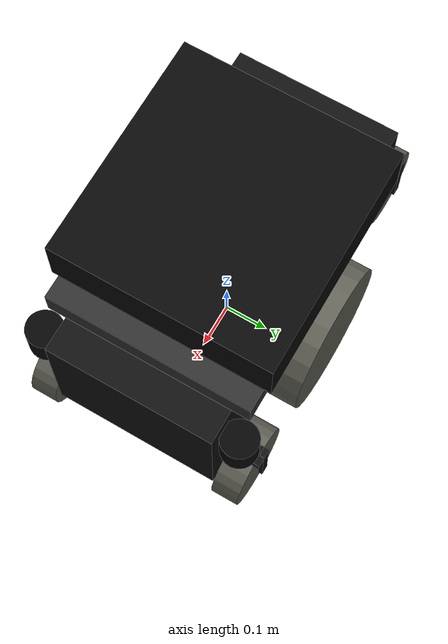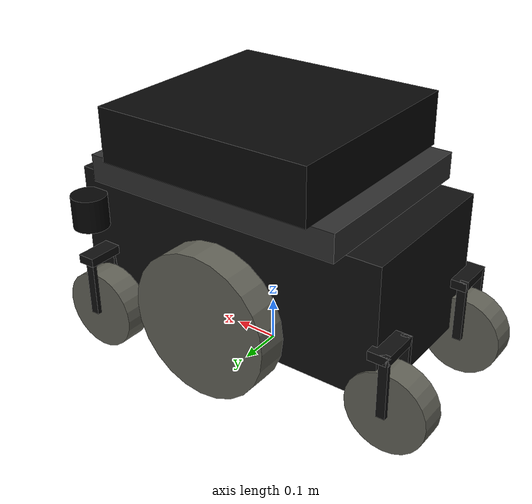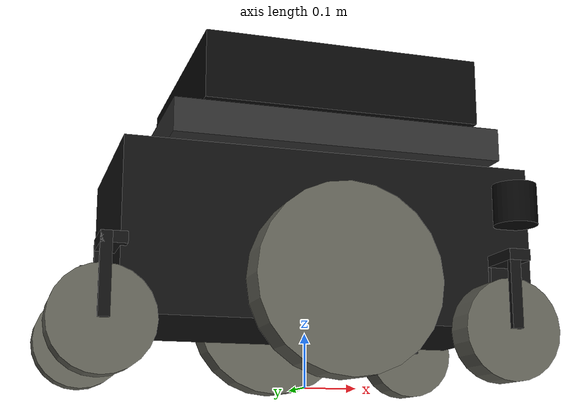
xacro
<?xml version="1.0"?>
<robot xmlns:xacro="http://www.ros.org/wiki/xacro" name="wheelchair">
  <xacro:include filename="wheelchair_components.xacro"/>

  <!-- Physical bringup may override these measured mount values. -->
  <xacro:arg name="lidar_right_x" default="0.330"/>
  <xacro:arg name="lidar_right_y" default="-0.220"/>
  <xacro:arg name="lidar_right_z" default="0.320"/>
  <xacro:arg name="lidar_right_yaw" default="0.479965544"/>
  <xacro:arg name="lidar_right_pitch" default="0.0"/>
  <xacro:arg name="lidar_right_roll" default="0.0"/>
  <xacro:arg name="lidar_left_x" default="0.330"/>
  <xacro:arg name="lidar_left_y" default="0.220"/>
  <xacro:arg name="lidar_left_z" default="0.320"/>
  <xacro:arg name="lidar_left_yaw" default="-0.479965544"/>
  <xacro:arg name="lidar_left_pitch" default="0.0"/>
  <xacro:arg name="lidar_left_roll" default="0.0"/>

  <!-- Coordinate convention has X forward, Y left, and Z up from the floor. -->
  <xacro:property name="chassis_length" value="0.75"/>
  <xacro:property name="chassis_width" value="0.37"/>
  <xacro:property name="chassis_height" value="0.30"/>
  <xacro:property name="chassis_z" value="0.25"/>

  <xacro:property name="seat_support_length" value="0.60"/>
  <xacro:property name="seat_support_width" value="0.45"/>
  <xacro:property name="seat_support_height" value="0.06"/>
  <xacro:property name="seat_support_z" value="0.43"/>

  <xacro:property name="seat_length" value="0.50"/>
  <xacro:property name="seat_width" value="0.48"/>
  <xacro:property name="seat_height" value="0.12"/>
  <xacro:property name="seat_z" value="0.52"/>

  <!-- Provisional masses keep Gazebo's unconstrained joints well-defined. -->
  <xacro:property name="chair_body_mass" value="5.0"/>
  <xacro:property name="drive_wheel_mass" value="0.75"/>
  <xacro:property name="caster_fork_mass" value="0.20"/>
  <xacro:property name="caster_wheel_mass" value="0.25"/>
  <xacro:property name="occupant_mass" value="75.0"/>

  <xacro:property name="drive_wheel_radius" value="0.165"/>
  <xacro:property name="drive_wheel_width" value="0.070"/>
  <xacro:property name="drive_wheel_y" value="0.225"/>

  <xacro:property name="caster_wheel_radius" value="0.090"/>
  <xacro:property name="caster_wheel_width" value="0.060"/>
  <xacro:property name="caster_swivel_z" value="0.230"/>
  <xacro:property name="caster_drop" value="0.140"/>

  <material name="chassis_black">
    <color rgba="0.06 0.06 0.06 1.0"/>
  </material>
  <material name="support_grey">
    <color rgba="0.18 0.18 0.18 1.0"/>
  </material>
  <material name="seat_black">
    <color rgba="0.03 0.03 0.03 1.0"/>
  </material>
  <material name="tire_grey">
    <color rgba="0.38 0.38 0.34 1.0"/>
  </material>
  <material name="sensor_black">
    <color rgba="0.02 0.02 0.02 1.0"/>
  </material>

  <link name="base_link">
    <xacro:box_inertial
      mass="${chair_body_mass}"
      size_x="${chassis_length}"
      size_y="${chassis_width}"
      size_z="${chassis_height}"
      origin_x="0.0"
      origin_y="0.0"
      origin_z="${chassis_z}"/>

    <visual name="lower_chassis_visual">
      <origin xyz="0 0 ${chassis_z}"/>
      <geometry>
        <box size="${chassis_length} ${chassis_width} ${chassis_height}"/>
      </geometry>
      <material name="chassis_black"/>
    </visual>
    <collision name="lower_chassis_collision">
      <origin xyz="0 0 ${chassis_z}"/>
      <geometry>
        <box size="${chassis_length} ${chassis_width} ${chassis_height}"/>
      </geometry>
    </collision>

    <visual name="seat_support_visual">
      <origin xyz="0 0 ${seat_support_z}"/>
      <geometry>
        <box size="${seat_support_length} ${seat_support_width} ${seat_support_height}"/>
      </geometry>
      <material name="support_grey"/>
    </visual>
    <collision name="seat_support_collision">
      <origin xyz="0 0 ${seat_support_z}"/>
      <geometry>
        <box size="${seat_support_length} ${seat_support_width} ${seat_support_height}"/>
      </geometry>
    </collision>

    <visual name="seat_cushion_visual">
      <origin xyz="0 0 ${seat_z}"/>
      <geometry>
        <box size="${seat_length} ${seat_width} ${seat_height}"/>
      </geometry>
      <material name="seat_black"/>
    </visual>
    <collision name="seat_cushion_collision">
      <origin xyz="0 0 ${seat_z}"/>
      <geometry>
        <box size="${seat_length} ${seat_width} ${seat_height}"/>
      </geometry>
    </collision>
  </link>

  <xacro:drive_wheel
    name="left_drive_wheel"
    x="0.0"
    y="${drive_wheel_y}"
    z="${drive_wheel_radius}"
    radius="${drive_wheel_radius}"
    width="${drive_wheel_width}"
    mass="${drive_wheel_mass}"/>
  <xacro:drive_wheel
    name="right_drive_wheel"
    x="0.0"
    y="${-drive_wheel_y}"
    z="${drive_wheel_radius}"
    radius="${drive_wheel_radius}"
    width="${drive_wheel_width}"
    mass="${drive_wheel_mass}"/>

  <xacro:caster
    prefix="front_left"
    swivel_x="0.320"
    swivel_y="0.220"
    swivel_z="${caster_swivel_z}"
    trail="0.020"
    drop="${caster_drop}"
    wheel_radius="${caster_wheel_radius}"
    wheel_width="${caster_wheel_width}"
    fork_mass="${caster_fork_mass}"
    wheel_mass="${caster_wheel_mass}"/>
  <xacro:caster
    prefix="front_right"
    swivel_x="0.320"
    swivel_y="-0.220"
    swivel_z="${caster_swivel_z}"
    trail="0.020"
    drop="${caster_drop}"
    wheel_radius="${caster_wheel_radius}"
    wheel_width="${caster_wheel_width}"
    fork_mass="${caster_fork_mass}"
    wheel_mass="${caster_wheel_mass}"/>
  <xacro:caster
    prefix="rear_left"
    swivel_x="-0.375"
    swivel_y="0.160"
    swivel_z="${caster_swivel_z}"
    trail="0.025"
    drop="${caster_drop}"
    wheel_radius="${caster_wheel_radius}"
    wheel_width="${caster_wheel_width}"
    fork_mass="${caster_fork_mass}"
    wheel_mass="${caster_wheel_mass}"/>
  <xacro:caster
    prefix="rear_right"
    swivel_x="-0.375"
    swivel_y="-0.160"
    swivel_z="${caster_swivel_z}"
    trail="0.025"
    drop="${caster_drop}"
    wheel_radius="${caster_wheel_radius}"
    wheel_width="${caster_wheel_width}"
    fork_mass="${caster_fork_mass}"
    wheel_mass="${caster_wheel_mass}"/>

  <!-- Invisible seated payload; location and inertia are provisional. -->
  <link name="occupant_payload">
    <xacro:box_inertial
      mass="${occupant_mass}"
      size_x="0.35"
      size_y="0.45"
      size_z="0.70"
      origin_x="0.0"
      origin_y="0.0"
      origin_z="0.0"/>
  </link>
  <joint name="occupant_payload_joint" type="fixed">
    <parent link="base_link"/>
    <child link="occupant_payload"/>
    <origin xyz="0 0 0.85" rpy="0 0 0"/>
  </joint>

  <!-- Simulated right L2 uses the same frame and mount as physical bringup. -->
  <link name="lidar_right_link">
    <visual name="l2_right_visual">
      <geometry>
        <cylinder radius="0.040" length="0.075"/>
      </geometry>
      <material name="sensor_black"/>
    </visual>
  </link>
  <joint name="lidar_right_mount" type="fixed">
    <parent link="base_link"/>
    <child link="lidar_right_link"/>
    <origin
      xyz="$(arg lidar_right_x) $(arg lidar_right_y) $(arg lidar_right_z)"
      rpy="$(arg lidar_right_roll) $(arg lidar_right_pitch) $(arg lidar_right_yaw)"/>
  </joint>

  <!-- The mounted left L2 frame is defined, but no left driver is launched. -->
  <link name="lidar_left_link">
    <visual name="l2_left_visual">
      <geometry>
        <cylinder radius="0.040" length="0.075"/>
      </geometry>
      <material name="sensor_black"/>
    </visual>
  </link>
  <joint name="lidar_left_mount" type="fixed">
    <parent link="base_link"/>
    <child link="lidar_left_link"/>
    <origin
      xyz="$(arg lidar_left_x) $(arg lidar_left_y) $(arg lidar_left_z)"
      rpy="$(arg lidar_left_roll) $(arg lidar_left_pitch) $(arg lidar_left_yaw)"/>
  </joint>

  <gazebo reference="lidar_right_link">
    <sensor name="lidar_right_sensor" type="ray">
      <always_on>true</always_on>
      <visualize>false</visualize>
      <update_rate>10.0</update_rate>
      <ray>
        <scan>
          <horizontal>
            <samples>720</samples>
            <resolution>1</resolution>
            <min_angle>-${pi}</min_angle>
            <max_angle>${pi}</max_angle>
          </horizontal>
          <vertical>
            <samples>18</samples>
            <resolution>1</resolution>
            <min_angle>-${pi / 4.0}</min_angle>
            <max_angle>${pi / 4.0}</max_angle>
          </vertical>
        </scan>
        <range>
          <min>0.45</min>
          <max>100.0</max>
          <resolution>0.01</resolution>
        </range>
      </ray>
      <plugin name="lidar_right_ros" filename="libgazebo_ros_ray_sensor.so">
        <ros>
          <remapping>~/out:=/lidar_right/points</remapping>
        </ros>
        <output_type>sensor_msgs/PointCloud2</output_type>
        <frame_name>lidar_right_link</frame_name>
      </plugin>
    </sensor>
  </gazebo>
</robot>

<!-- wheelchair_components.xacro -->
<robot xmlns:xacro="http://www.ros.org/wiki/xacro">
  <xacro:property name="caster_arm_depth" value="0.020"/>
  <xacro:property name="caster_arm_thickness" value="0.010"/>
  <xacro:property name="caster_wheel_clearance" value="0.005"/>
  <xacro:property name="caster_crossbar_height" value="0.020"/>

  <xacro:macro
    name="box_inertial"
    params="mass size_x size_y size_z origin_x origin_y origin_z">
    <inertial>
      <origin xyz="${origin_x} ${origin_y} ${origin_z}" rpy="0 0 0"/>
      <mass value="${mass}"/>
      <inertia
        ixx="${mass * (size_y * size_y + size_z * size_z) / 12.0}"
        ixy="0.0"
        ixz="0.0"
        iyy="${mass * (size_x * size_x + size_z * size_z) / 12.0}"
        iyz="0.0"
        izz="${mass * (size_x * size_x + size_y * size_y) / 12.0}"/>
    </inertial>
  </xacro:macro>

  <xacro:macro name="cylinder_y_inertial" params="mass radius length">
    <inertial>
      <origin xyz="0 0 0" rpy="0 0 0"/>
      <mass value="${mass}"/>
      <inertia
        ixx="${mass * (3.0 * radius * radius + length * length) / 12.0}"
        ixy="0.0"
        ixz="0.0"
        iyy="${mass * radius * radius / 2.0}"
        iyz="0.0"
        izz="${mass * (3.0 * radius * radius + length * length) / 12.0}"/>
    </inertial>
  </xacro:macro>

  <xacro:macro name="drive_wheel" params="name x y z radius width mass">
    <link name="${name}">
      <xacro:cylinder_y_inertial mass="${mass}" radius="${radius}" length="${width}"/>
      <visual name="${name}_visual">
        <origin xyz="0 0 0" rpy="${pi / 2.0} 0 0"/>
        <geometry>
          <cylinder radius="${radius}" length="${width}"/>
        </geometry>
        <material name="tire_grey"/>
      </visual>
      <collision name="${name}_collision">
        <origin xyz="0 0 0" rpy="${pi / 2.0} 0 0"/>
        <geometry>
          <cylinder radius="${radius}" length="${width}"/>
        </geometry>
      </collision>
    </link>
    <joint name="${name}_joint" type="continuous">
      <parent link="base_link"/>
      <child link="${name}"/>
      <origin xyz="${x} ${y} ${z}" rpy="0 0 0"/>
      <axis xyz="0 1 0"/>
    </joint>
  </xacro:macro>

  <xacro:macro
    name="caster"
    params="prefix swivel_x swivel_y swivel_z trail drop wheel_radius wheel_width fork_mass wheel_mass">
    <link name="${prefix}_caster_fork">
      <xacro:box_inertial
        mass="${fork_mass}"
        size_x="${trail + caster_arm_depth}"
        size_y="${wheel_width + 2.0 * caster_wheel_clearance + 2.0 * caster_arm_thickness}"
        size_z="${drop}"
        origin_x="${-trail / 2.0}"
        origin_y="0.0"
        origin_z="${-drop / 2.0}"/>

      <!-- The U-fork is visual-only; collision is intentionally left to the wheel. -->
      <visual name="${prefix}_caster_crossbar_visual">
        <origin xyz="${-trail / 2.0} 0 ${-caster_crossbar_height / 2.0}"/>
        <geometry>
          <box size="${trail + caster_arm_depth} ${wheel_width + 2.0 * caster_wheel_clearance + 2.0 * caster_arm_thickness} ${caster_crossbar_height}"/>
        </geometry>
        <material name="chassis_black"/>
      </visual>
      <visual name="${prefix}_caster_left_arm_visual">
        <origin xyz="${-trail} ${wheel_width / 2.0 + caster_wheel_clearance + caster_arm_thickness / 2.0} ${-drop / 2.0}"/>
        <geometry>
          <box size="${caster_arm_depth} ${caster_arm_thickness} ${drop}"/>
        </geometry>
        <material name="chassis_black"/>
      </visual>
      <visual name="${prefix}_caster_right_arm_visual">
        <origin xyz="${-trail} ${-(wheel_width / 2.0 + caster_wheel_clearance + caster_arm_thickness / 2.0)} ${-drop / 2.0}"/>
        <geometry>
          <box size="${caster_arm_depth} ${caster_arm_thickness} ${drop}"/>
        </geometry>
        <material name="chassis_black"/>
      </visual>
    </link>
    <joint name="${prefix}_caster_swivel_joint" type="continuous">
      <parent link="base_link"/>
      <child link="${prefix}_caster_fork"/>
      <origin xyz="${swivel_x} ${swivel_y} ${swivel_z}" rpy="0 0 0"/>
      <axis xyz="0 0 1"/>
    </joint>

    <link name="${prefix}_caster_wheel">
      <xacro:cylinder_y_inertial mass="${wheel_mass}" radius="${wheel_radius}" length="${wheel_width}"/>
      <visual name="${prefix}_caster_wheel_visual">
        <origin xyz="0 0 0" rpy="${pi / 2.0} 0 0"/>
        <geometry>
          <cylinder radius="${wheel_radius}" length="${wheel_width}"/>
        </geometry>
        <material name="tire_grey"/>
      </visual>
      <collision name="${prefix}_caster_wheel_collision">
        <origin xyz="0 0 0" rpy="${pi / 2.0} 0 0"/>
        <geometry>
          <cylinder radius="${wheel_radius}" length="${wheel_width}"/>
        </geometry>
      </collision>
    </link>
    <joint name="${prefix}_caster_wheel_joint" type="continuous">
      <parent link="${prefix}_caster_fork"/>
      <child link="${prefix}_caster_wheel"/>
      <origin xyz="${-trail} 0 ${-drop}" rpy="0 0 0"/>
      <axis xyz="0 1 0"/>
    </joint>
  </xacro:macro>
</robot>
